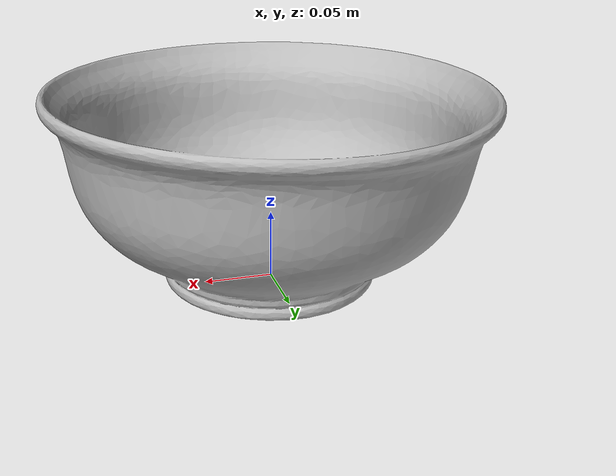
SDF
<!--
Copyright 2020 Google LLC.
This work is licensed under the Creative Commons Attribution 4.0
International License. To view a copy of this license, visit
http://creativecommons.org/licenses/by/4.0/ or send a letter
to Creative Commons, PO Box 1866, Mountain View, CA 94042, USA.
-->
<?xml version="1.0" ?>
<sdf version="1.6">
  <model name="Room_Essentials_Mug_White_Yellow">
    <link name="link_0">

      <!--sposto baricentro tazza (prima sbilanciata causa manico)-->
      <inertial>
        <pose>-0.015 0 0.005 0 0 0</pose>
        <mass>0.4</mass> <inertia>
          <ixx>0.0005</ixx>
          <ixy>0</ixy>
          <ixz>0</ixz>
          <iyy>0.0005</iyy>
          <iyz>0</iyz>
          <izz>0.0005</izz>
        </inertia>
      </inertial>

      <visual name="visual">
        <geometry>
          <mesh>
            <uri>meshes/model.obj</uri>
          </mesh>
        </geometry>
      </visual>

      <collision name="collision_0">
        <geometry>
          <mesh>
            <uri>meshes/model.obj</uri>
          </mesh>
        </geometry>
        <surface>
          <friction>
            <ode>
              <mu>5.0</mu>
              <mu2>5.0</mu2>
            </ode>
          </friction>
          <contact>
            <ode>
              <kp>100000.0</kp>
              <kd>100.0</kd>
              <min_depth>0.001</min_depth>
            </ode>
          </contact>
        </surface>
      </collision>

    </link>
  </model>
</sdf>
